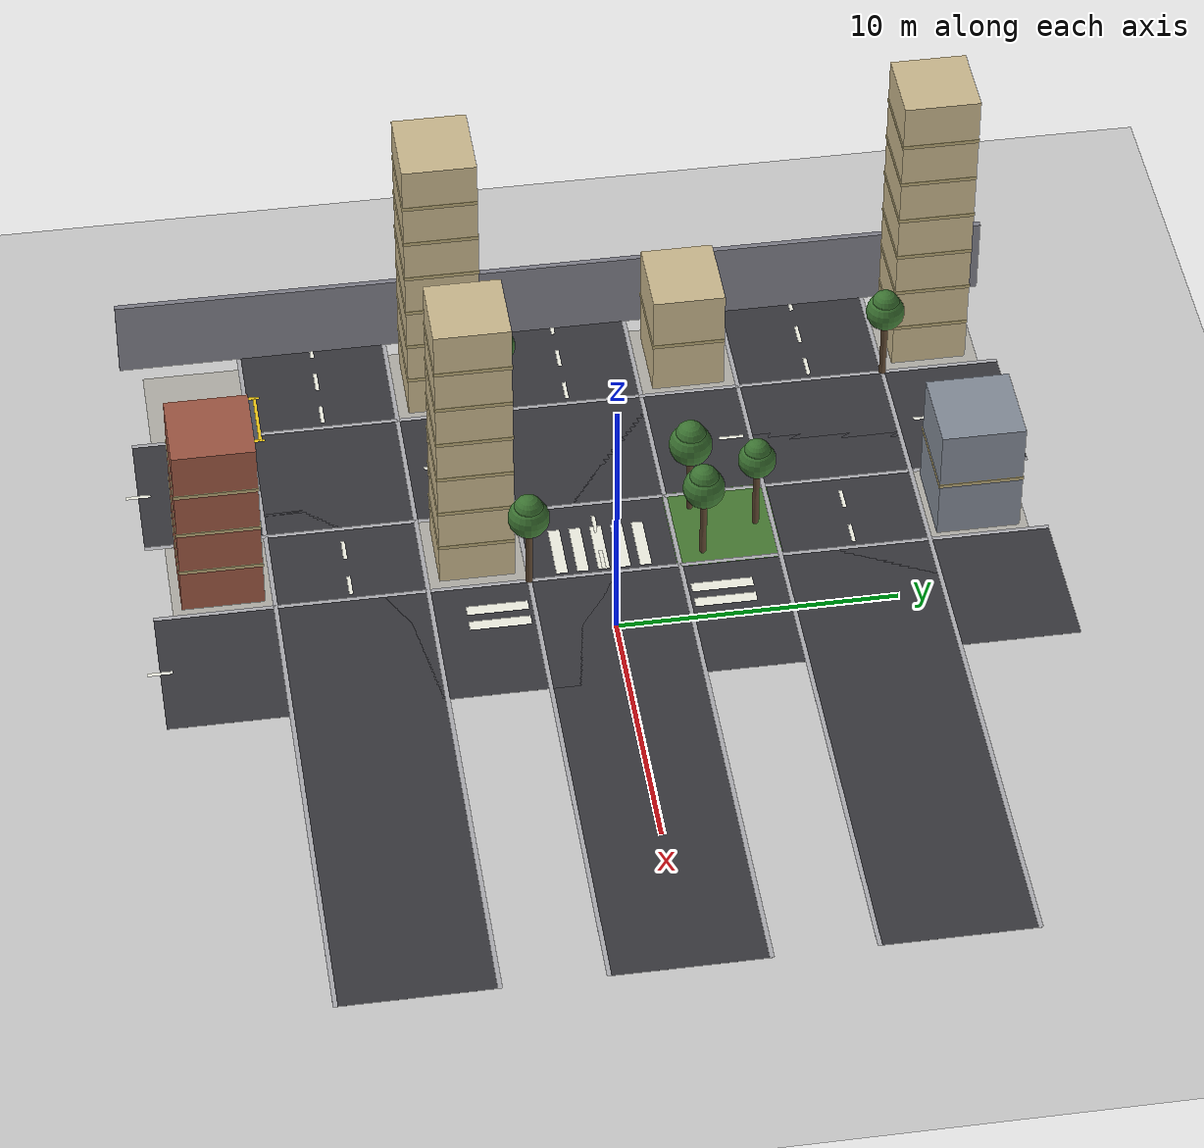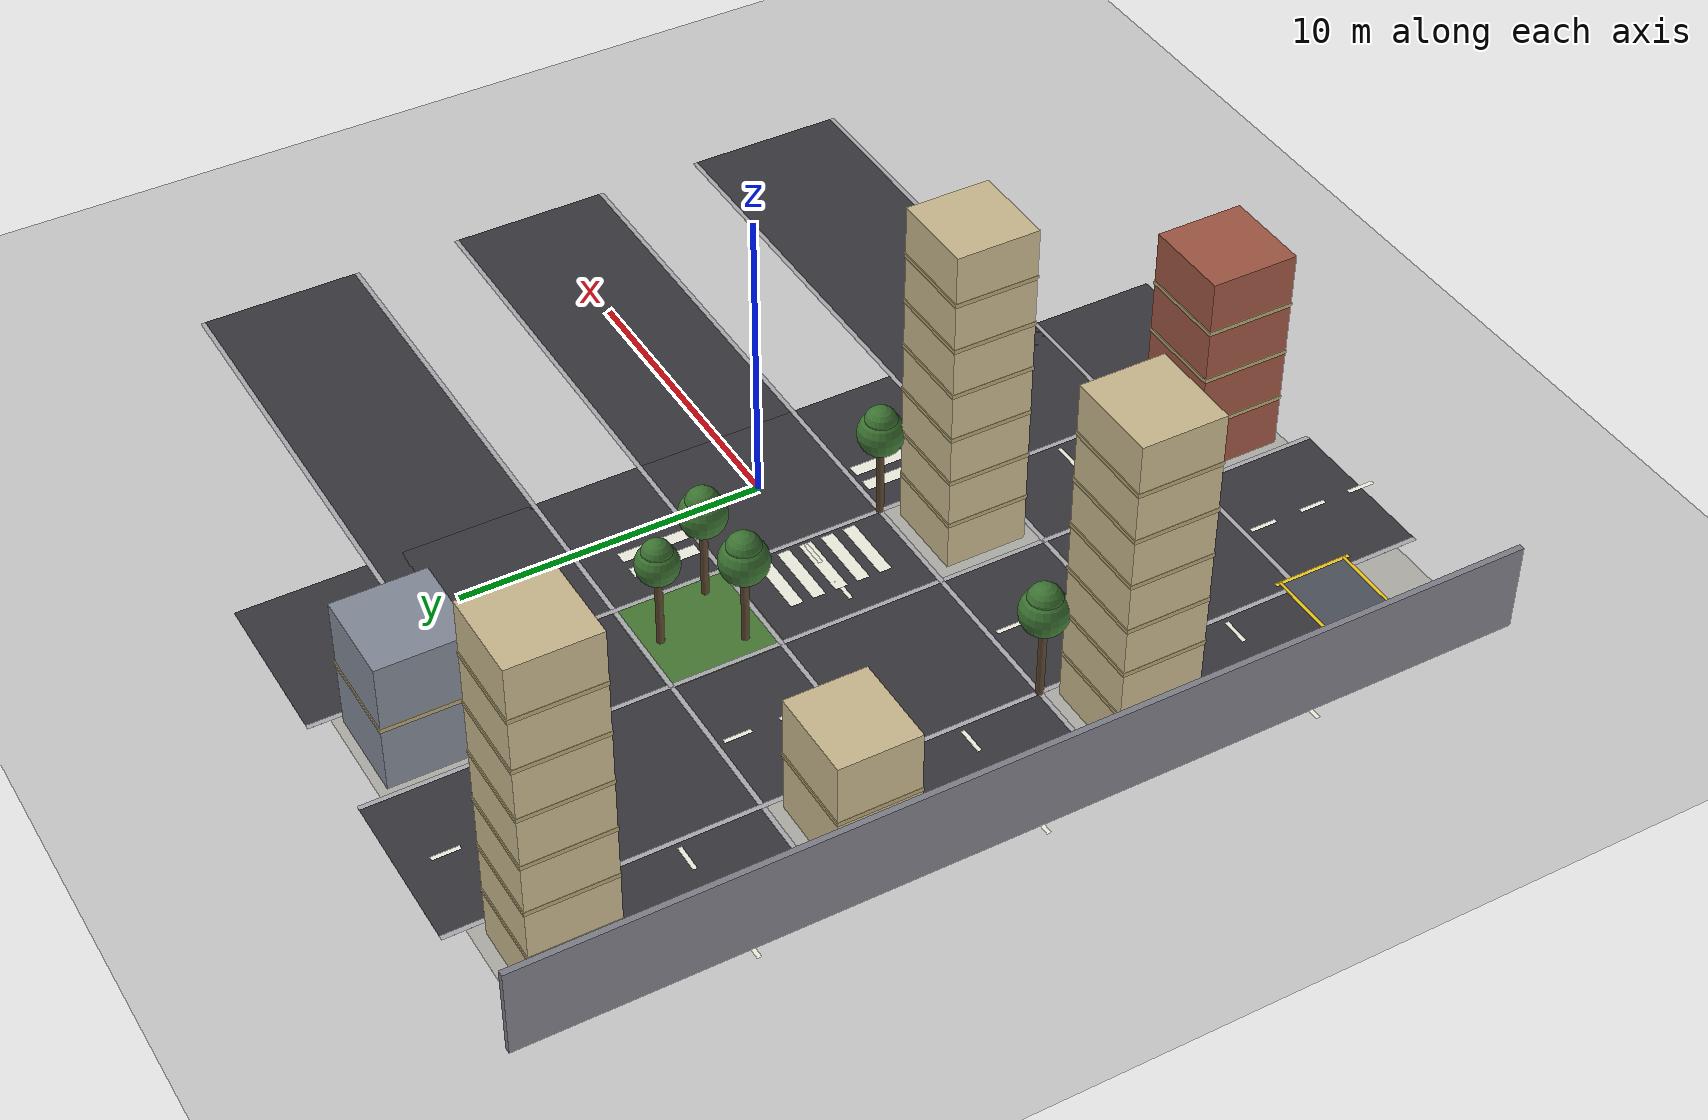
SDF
<sdf version="1.6">
 <world name="default">
  <include><uri>model://sun</uri></include>
  <include><uri>model://ground_plane</uri></include>
  <model name="road_ns_0">
   <static>true</static>
   <pose>-9.0000 0.0000 0.0010 0 0 0</pose>
   <link name="link">
    <visual name="v">
     <geometry><box><size>5.400 32.000 0.002</size></box></geometry>
     <material><ambient>0.13 0.13 0.14 1</ambient><diffuse>0.22 0.22 0.24 1</diffuse></material>
    </visual>
   </link>
  </model>
  <model name="road_ew_0">
   <static>true</static>
   <pose>0.0000 -9.0000 0.0010 0 0 0</pose>
   <link name="link">
    <visual name="v">
     <geometry><box><size>32.000 5.400 0.002</size></box></geometry>
     <material><ambient>0.13 0.13 0.14 1</ambient><diffuse>0.22 0.22 0.24 1</diffuse></material>
    </visual>
   </link>
  </model>
  <model name="kerb_ns_0_-1">
   <static>true</static>
   <pose>-11.7000 0.0000 0.0030 0 0 0</pose>
   <link name="link">
    <visual name="v">
     <geometry><box><size>0.160 32.000 0.002</size></box></geometry>
     <material><ambient>0.42 0.42 0.44 1</ambient><diffuse>0.68 0.68 0.70 1</diffuse></material>
    </visual>
   </link>
  </model>
  <model name="kerb_ew_0_-1">
   <static>true</static>
   <pose>0.0000 -11.7000 0.0030 0 0 0</pose>
   <link name="link">
    <visual name="v">
     <geometry><box><size>32.000 0.160 0.002</size></box></geometry>
     <material><ambient>0.42 0.42 0.44 1</ambient><diffuse>0.68 0.68 0.70 1</diffuse></material>
    </visual>
   </link>
  </model>
  <model name="kerb_ns_0_1">
   <static>true</static>
   <pose>-6.3000 0.0000 0.0030 0 0 0</pose>
   <link name="link">
    <visual name="v">
     <geometry><box><size>0.160 32.000 0.002</size></box></geometry>
     <material><ambient>0.42 0.42 0.44 1</ambient><diffuse>0.68 0.68 0.70 1</diffuse></material>
    </visual>
   </link>
  </model>
  <model name="kerb_ew_0_1">
   <static>true</static>
   <pose>0.0000 -6.3000 0.0030 0 0 0</pose>
   <link name="link">
    <visual name="v">
     <geometry><box><size>32.000 0.160 0.002</size></box></geometry>
     <material><ambient>0.42 0.42 0.44 1</ambient><diffuse>0.68 0.68 0.70 1</diffuse></material>
    </visual>
   </link>
  </model>
  <model name="road_ns_1">
   <static>true</static>
   <pose>0.0000 0.0000 0.0010 0 0 0</pose>
   <link name="link">
    <visual name="v">
     <geometry><box><size>5.400 32.000 0.002</size></box></geometry>
     <material><ambient>0.13 0.13 0.14 1</ambient><diffuse>0.22 0.22 0.24 1</diffuse></material>
    </visual>
   </link>
  </model>
  <model name="road_ew_1">
   <static>true</static>
   <pose>0.0000 0.0000 0.0010 0 0 0</pose>
   <link name="link">
    <visual name="v">
     <geometry><box><size>32.000 5.400 0.002</size></box></geometry>
     <material><ambient>0.13 0.13 0.14 1</ambient><diffuse>0.22 0.22 0.24 1</diffuse></material>
    </visual>
   </link>
  </model>
  <model name="kerb_ns_1_-1">
   <static>true</static>
   <pose>-2.7000 0.0000 0.0030 0 0 0</pose>
   <link name="link">
    <visual name="v">
     <geometry><box><size>0.160 32.000 0.002</size></box></geometry>
     <material><ambient>0.42 0.42 0.44 1</ambient><diffuse>0.68 0.68 0.70 1</diffuse></material>
    </visual>
   </link>
  </model>
  <model name="kerb_ew_1_-1">
   <static>true</static>
   <pose>0.0000 -2.7000 0.0030 0 0 0</pose>
   <link name="link">
    <visual name="v">
     <geometry><box><size>32.000 0.160 0.002</size></box></geometry>
     <material><ambient>0.42 0.42 0.44 1</ambient><diffuse>0.68 0.68 0.70 1</diffuse></material>
    </visual>
   </link>
  </model>
  <model name="kerb_ew_1_1">
   <static>true</static>
   <pose>0.0000 2.7000 0.0030 0 0 0</pose>
   <link name="link">
    <visual name="v">
     <geometry><box><size>32.000 0.160 0.002</size></box></geometry>
     <material><ambient>0.42 0.42 0.44 1</ambient><diffuse>0.68 0.68 0.70 1</diffuse></material>
    </visual>
   </link>
  </model>
  <model name="road_ew_2">
   <static>true</static>
   <pose>0.0000 9.0000 0.0010 0 0 0</pose>
   <link name="link">
    <visual name="v">
     <geometry><box><size>32.000 5.400 0.002</size></box></geometry>
     <material><ambient>0.13 0.13 0.14 1</ambient><diffuse>0.22 0.22 0.24 1</diffuse></material>
    </visual>
   </link>
  </model>
  <model name="kerb_ew_2_-1">
   <static>true</static>
   <pose>0.0000 6.3000 0.0030 0 0 0</pose>
   <link name="link">
    <visual name="v">
     <geometry><box><size>32.000 0.160 0.002</size></box></geometry>
     <material><ambient>0.42 0.42 0.44 1</ambient><diffuse>0.68 0.68 0.70 1</diffuse></material>
    </visual>
   </link>
  </model>
  <model name="kerb_ew_2_1">
   <static>true</static>
   <pose>0.0000 11.7000 0.0030 0 0 0</pose>
   <link name="link">
    <visual name="v">
     <geometry><box><size>32.000 0.160 0.002</size></box></geometry>
     <material><ambient>0.42 0.42 0.44 1</ambient><diffuse>0.68 0.68 0.70 1</diffuse></material>
    </visual>
   </link>
  </model>
  <model name="dash_ns_0">
   <static>true</static>
   <pose>-9.0000 -16.0000 0.0035 0 0 0</pose>
   <link name="link">
    <visual name="v">
     <geometry><box><size>0.140 0.900 0.002</size></box></geometry>
     <material><ambient>0.60 0.60 0.55 1</ambient><diffuse>0.95 0.95 0.90 1</diffuse></material>
    </visual>
   </link>
  </model>
  <model name="dash_ns_1">
   <static>true</static>
   <pose>-9.0000 -14.2000 0.0035 0 0 0</pose>
   <link name="link">
    <visual name="v">
     <geometry><box><size>0.140 0.900 0.002</size></box></geometry>
     <material><ambient>0.60 0.60 0.55 1</ambient><diffuse>0.95 0.95 0.90 1</diffuse></material>
    </visual>
   </link>
  </model>
  <model name="dash_ns_2">
   <static>true</static>
   <pose>-9.0000 -12.4000 0.0035 0 0 0</pose>
   <link name="link">
    <visual name="v">
     <geometry><box><size>0.140 0.900 0.002</size></box></geometry>
     <material><ambient>0.60 0.60 0.55 1</ambient><diffuse>0.95 0.95 0.90 1</diffuse></material>
    </visual>
   </link>
  </model>
  <model name="dash_ns_3">
   <static>true</static>
   <pose>-9.0000 -5.2000 0.0035 0 0 0</pose>
   <link name="link">
    <visual name="v">
     <geometry><box><size>0.140 0.900 0.002</size></box></geometry>
     <material><ambient>0.60 0.60 0.55 1</ambient><diffuse>0.95 0.95 0.90 1</diffuse></material>
    </visual>
   </link>
  </model>
  <model name="dash_ns_4">
   <static>true</static>
   <pose>-9.0000 -3.4000 0.0035 0 0 0</pose>
   <link name="link">
    <visual name="v">
     <geometry><box><size>0.140 0.900 0.002</size></box></geometry>
     <material><ambient>0.60 0.60 0.55 1</ambient><diffuse>0.95 0.95 0.90 1</diffuse></material>
    </visual>
   </link>
  </model>
  <model name="dash_ns_5">
   <static>true</static>
   <pose>-9.0000 3.8000 0.0035 0 0 0</pose>
   <link name="link">
    <visual name="v">
     <geometry><box><size>0.140 0.900 0.002</size></box></geometry>
     <material><ambient>0.60 0.60 0.55 1</ambient><diffuse>0.95 0.95 0.90 1</diffuse></material>
    </visual>
   </link>
  </model>
  <model name="dash_ns_6">
   <static>true</static>
   <pose>-9.0000 5.6000 0.0035 0 0 0</pose>
   <link name="link">
    <visual name="v">
     <geometry><box><size>0.140 0.900 0.002</size></box></geometry>
     <material><ambient>0.60 0.60 0.55 1</ambient><diffuse>0.95 0.95 0.90 1</diffuse></material>
    </visual>
   </link>
  </model>
  <model name="dash_ns_7">
   <static>true</static>
   <pose>-9.0000 12.8000 0.0035 0 0 0</pose>
   <link name="link">
    <visual name="v">
     <geometry><box><size>0.140 0.900 0.002</size></box></geometry>
     <material><ambient>0.60 0.60 0.55 1</ambient><diffuse>0.95 0.95 0.90 1</diffuse></material>
    </visual>
   </link>
  </model>
  <model name="dash_ns_8">
   <static>true</static>
   <pose>-9.0000 14.6000 0.0035 0 0 0</pose>
   <link name="link">
    <visual name="v">
     <geometry><box><size>0.140 0.900 0.002</size></box></geometry>
     <material><ambient>0.60 0.60 0.55 1</ambient><diffuse>0.95 0.95 0.90 1</diffuse></material>
    </visual>
   </link>
  </model>
  <model name="dash_ew_9">
   <static>true</static>
   <pose>-16.0000 -9.0000 0.0035 0 0 0</pose>
   <link name="link">
    <visual name="v">
     <geometry><box><size>0.900 0.140 0.002</size></box></geometry>
     <material><ambient>0.60 0.60 0.55 1</ambient><diffuse>0.95 0.95 0.90 1</diffuse></material>
    </visual>
   </link>
  </model>
  <model name="dash_ew_10">
   <static>true</static>
   <pose>-14.2000 -9.0000 0.0035 0 0 0</pose>
   <link name="link">
    <visual name="v">
     <geometry><box><size>0.900 0.140 0.002</size></box></geometry>
     <material><ambient>0.60 0.60 0.55 1</ambient><diffuse>0.95 0.95 0.90 1</diffuse></material>
    </visual>
   </link>
  </model>
  <model name="dash_ew_11">
   <static>true</static>
   <pose>-12.4000 -9.0000 0.0035 0 0 0</pose>
   <link name="link">
    <visual name="v">
     <geometry><box><size>0.900 0.140 0.002</size></box></geometry>
     <material><ambient>0.60 0.60 0.55 1</ambient><diffuse>0.95 0.95 0.90 1</diffuse></material>
    </visual>
   </link>
  </model>
  <model name="dash_ew_12">
   <static>true</static>
   <pose>-5.2000 -9.0000 0.0035 0 0 0</pose>
   <link name="link">
    <visual name="v">
     <geometry><box><size>0.900 0.140 0.002</size></box></geometry>
     <material><ambient>0.60 0.60 0.55 1</ambient><diffuse>0.95 0.95 0.90 1</diffuse></material>
    </visual>
   </link>
  </model>
  <model name="dash_ew_13">
   <static>true</static>
   <pose>-3.4000 -9.0000 0.0035 0 0 0</pose>
   <link name="link">
    <visual name="v">
     <geometry><box><size>0.900 0.140 0.002</size></box></geometry>
     <material><ambient>0.60 0.60 0.55 1</ambient><diffuse>0.95 0.95 0.90 1</diffuse></material>
    </visual>
   </link>
  </model>
  <model name="dash_ns_18">
   <static>true</static>
   <pose>0.0000 -16.0000 0.0035 0 0 0</pose>
   <link name="link">
    <visual name="v">
     <geometry><box><size>0.140 0.900 0.002</size></box></geometry>
     <material><ambient>0.60 0.60 0.55 1</ambient><diffuse>0.95 0.95 0.90 1</diffuse></material>
    </visual>
   </link>
  </model>
  <model name="dash_ew_27">
   <static>true</static>
   <pose>-16.0000 0.0000 0.0035 0 0 0</pose>
   <link name="link">
    <visual name="v">
     <geometry><box><size>0.900 0.140 0.002</size></box></geometry>
     <material><ambient>0.60 0.60 0.55 1</ambient><diffuse>0.95 0.95 0.90 1</diffuse></material>
    </visual>
   </link>
  </model>
  <model name="dash_ew_28">
   <static>true</static>
   <pose>-14.2000 0.0000 0.0035 0 0 0</pose>
   <link name="link">
    <visual name="v">
     <geometry><box><size>0.900 0.140 0.002</size></box></geometry>
     <material><ambient>0.60 0.60 0.55 1</ambient><diffuse>0.95 0.95 0.90 1</diffuse></material>
    </visual>
   </link>
  </model>
  <model name="dash_ew_29">
   <static>true</static>
   <pose>-12.4000 0.0000 0.0035 0 0 0</pose>
   <link name="link">
    <visual name="v">
     <geometry><box><size>0.900 0.140 0.002</size></box></geometry>
     <material><ambient>0.60 0.60 0.55 1</ambient><diffuse>0.95 0.95 0.90 1</diffuse></material>
    </visual>
   </link>
  </model>
  <model name="dash_ew_30">
   <static>true</static>
   <pose>-5.2000 0.0000 0.0035 0 0 0</pose>
   <link name="link">
    <visual name="v">
     <geometry><box><size>0.900 0.140 0.002</size></box></geometry>
     <material><ambient>0.60 0.60 0.55 1</ambient><diffuse>0.95 0.95 0.90 1</diffuse></material>
    </visual>
   </link>
  </model>
  <model name="dash_ew_31">
   <static>true</static>
   <pose>-3.4000 0.0000 0.0035 0 0 0</pose>
   <link name="link">
    <visual name="v">
     <geometry><box><size>0.900 0.140 0.002</size></box></geometry>
     <material><ambient>0.60 0.60 0.55 1</ambient><diffuse>0.95 0.95 0.90 1</diffuse></material>
    </visual>
   </link>
  </model>
  <model name="dash_ew_45">
   <static>true</static>
   <pose>-16.0000 9.0000 0.0035 0 0 0</pose>
   <link name="link">
    <visual name="v">
     <geometry><box><size>0.900 0.140 0.002</size></box></geometry>
     <material><ambient>0.60 0.60 0.55 1</ambient><diffuse>0.95 0.95 0.90 1</diffuse></material>
    </visual>
   </link>
  </model>
  <model name="dash_ew_46">
   <static>true</static>
   <pose>-14.2000 9.0000 0.0035 0 0 0</pose>
   <link name="link">
    <visual name="v">
     <geometry><box><size>0.900 0.140 0.002</size></box></geometry>
     <material><ambient>0.60 0.60 0.55 1</ambient><diffuse>0.95 0.95 0.90 1</diffuse></material>
    </visual>
   </link>
  </model>
  <model name="dash_ew_47">
   <static>true</static>
   <pose>-12.4000 9.0000 0.0035 0 0 0</pose>
   <link name="link">
    <visual name="v">
     <geometry><box><size>0.900 0.140 0.002</size></box></geometry>
     <material><ambient>0.60 0.60 0.55 1</ambient><diffuse>0.95 0.95 0.90 1</diffuse></material>
    </visual>
   </link>
  </model>
  <model name="dash_ew_48">
   <static>true</static>
   <pose>-5.2000 9.0000 0.0035 0 0 0</pose>
   <link name="link">
    <visual name="v">
     <geometry><box><size>0.900 0.140 0.002</size></box></geometry>
     <material><ambient>0.60 0.60 0.55 1</ambient><diffuse>0.95 0.95 0.90 1</diffuse></material>
    </visual>
   </link>
  </model>
  <model name="dash_ew_49">
   <static>true</static>
   <pose>-3.4000 9.0000 0.0035 0 0 0</pose>
   <link name="link">
    <visual name="v">
     <geometry><box><size>0.900 0.140 0.002</size></box></geometry>
     <material><ambient>0.60 0.60 0.55 1</ambient><diffuse>0.95 0.95 0.90 1</diffuse></material>
    </visual>
   </link>
  </model>
  <model name="zebra_0">
   <static>true</static>
   <pose>-1.5000 4.0000 0.0035 0 0 0</pose>
   <link name="link">
    <visual name="v">
     <geometry><box><size>0.420 2.200 0.002</size></box></geometry>
     <material><ambient>0.60 0.60 0.55 1</ambient><diffuse>0.95 0.95 0.90 1</diffuse></material>
    </visual>
   </link>
  </model>
  <model name="zebra_1">
   <static>true</static>
   <pose>-0.7500 4.0000 0.0035 0 0 0</pose>
   <link name="link">
    <visual name="v">
     <geometry><box><size>0.420 2.200 0.002</size></box></geometry>
     <material><ambient>0.60 0.60 0.55 1</ambient><diffuse>0.95 0.95 0.90 1</diffuse></material>
    </visual>
   </link>
  </model>
  <model name="zebra_5">
   <static>true</static>
   <pose>-1.5000 -4.0000 0.0035 0 0 0</pose>
   <link name="link">
    <visual name="v">
     <geometry><box><size>0.420 2.200 0.002</size></box></geometry>
     <material><ambient>0.60 0.60 0.55 1</ambient><diffuse>0.95 0.95 0.90 1</diffuse></material>
    </visual>
   </link>
  </model>
  <model name="zebra_6">
   <static>true</static>
   <pose>-0.7500 -4.0000 0.0035 0 0 0</pose>
   <link name="link">
    <visual name="v">
     <geometry><box><size>0.420 2.200 0.002</size></box></geometry>
     <material><ambient>0.60 0.60 0.55 1</ambient><diffuse>0.95 0.95 0.90 1</diffuse></material>
    </visual>
   </link>
  </model>
  <model name="zebra_15">
   <static>true</static>
   <pose>-4.0000 -1.5000 0.0035 0 0 0</pose>
   <link name="link">
    <visual name="v">
     <geometry><box><size>2.200 0.420 0.002</size></box></geometry>
     <material><ambient>0.60 0.60 0.55 1</ambient><diffuse>0.95 0.95 0.90 1</diffuse></material>
    </visual>
   </link>
  </model>
  <model name="zebra_16">
   <static>true</static>
   <pose>-4.0000 -0.7500 0.0035 0 0 0</pose>
   <link name="link">
    <visual name="v">
     <geometry><box><size>2.200 0.420 0.002</size></box></geometry>
     <material><ambient>0.60 0.60 0.55 1</ambient><diffuse>0.95 0.95 0.90 1</diffuse></material>
    </visual>
   </link>
  </model>
  <model name="zebra_17">
   <static>true</static>
   <pose>-4.0000 0.0000 0.0035 0 0 0</pose>
   <link name="link">
    <visual name="v">
     <geometry><box><size>2.200 0.420 0.002</size></box></geometry>
     <material><ambient>0.60 0.60 0.55 1</ambient><diffuse>0.95 0.95 0.90 1</diffuse></material>
    </visual>
   </link>
  </model>
  <model name="zebra_18">
   <static>true</static>
   <pose>-4.0000 0.7500 0.0035 0 0 0</pose>
   <link name="link">
    <visual name="v">
     <geometry><box><size>2.200 0.420 0.002</size></box></geometry>
     <material><ambient>0.60 0.60 0.55 1</ambient><diffuse>0.95 0.95 0.90 1</diffuse></material>
    </visual>
   </link>
  </model>
  <model name="zebra_19">
   <static>true</static>
   <pose>-4.0000 1.5000 0.0035 0 0 0</pose>
   <link name="link">
    <visual name="v">
     <geometry><box><size>2.200 0.420 0.002</size></box></geometry>
     <material><ambient>0.60 0.60 0.55 1</ambient><diffuse>0.95 0.95 0.90 1</diffuse></material>
    </visual>
   </link>
  </model>
  <model name="pavement_00">
   <static>true</static>
   <pose>-13.5000 -4.5000 0.0010 0 0 0</pose>
   <link name="link">
    <visual name="v">
     <geometry><box><size>3.600 3.600 0.002</size></box></geometry>
     <material><ambient>0.44 0.43 0.41 1</ambient><diffuse>0.70 0.69 0.66 1</diffuse></material>
    </visual>
   </link>
  </model>
  <model name="pavement_01">
   <static>true</static>
   <pose>-13.5000 4.5000 0.0010 0 0 0</pose>
   <link name="link">
    <visual name="v">
     <geometry><box><size>3.600 3.600 0.002</size></box></geometry>
     <material><ambient>0.44 0.43 0.41 1</ambient><diffuse>0.70 0.69 0.66 1</diffuse></material>
    </visual>
   </link>
  </model>
  <model name="pavement_02">
   <static>true</static>
   <pose>-13.5000 13.5000 0.0010 0 0 0</pose>
   <link name="link">
    <visual name="v">
     <geometry><box><size>3.600 3.600 0.002</size></box></geometry>
     <material><ambient>0.44 0.43 0.41 1</ambient><diffuse>0.70 0.69 0.66 1</diffuse></material>
    </visual>
   </link>
  </model>
  <model name="pavement_03">
   <static>true</static>
   <pose>-4.5000 -13.5000 0.0010 0 0 0</pose>
   <link name="link">
    <visual name="v">
     <geometry><box><size>3.600 3.600 0.002</size></box></geometry>
     <material><ambient>0.44 0.43 0.41 1</ambient><diffuse>0.70 0.69 0.66 1</diffuse></material>
    </visual>
   </link>
  </model>
  <model name="pavement_04">
   <static>true</static>
   <pose>-4.5000 -4.5000 0.0010 0 0 0</pose>
   <link name="link">
    <visual name="v">
     <geometry><box><size>3.600 3.600 0.002</size></box></geometry>
     <material><ambient>0.44 0.43 0.41 1</ambient><diffuse>0.70 0.69 0.66 1</diffuse></material>
    </visual>
   </link>
  </model>
  <model name="pavement_06">
   <static>true</static>
   <pose>-4.5000 13.5000 0.0010 0 0 0</pose>
   <link name="link">
    <visual name="v">
     <geometry><box><size>3.600 3.600 0.002</size></box></geometry>
     <material><ambient>0.44 0.43 0.41 1</ambient><diffuse>0.70 0.69 0.66 1</diffuse></material>
    </visual>
   </link>
  </model>
  <model name="pavement_15">
   <static>true</static>
   <pose>-13.5000 -13.5000 0.0010 0 0 0</pose>
   <link name="link">
    <visual name="v">
     <geometry><box><size>3.600 3.600 0.002</size></box></geometry>
     <material><ambient>0.44 0.43 0.41 1</ambient><diffuse>0.70 0.69 0.66 1</diffuse></material>
    </visual>
   </link>
  </model>
  <model name="park_lawn">
   <static>true</static>
   <pose>-4.5000 4.5000 0.0014 0 0 0</pose>
   <link name="link">
    <visual name="v">
     <geometry><box><size>3.800 3.800 0.002</size></box></geometry>
     <material><ambient>0.16 0.28 0.12 1</ambient><diffuse>0.28 0.48 0.20 1</diffuse></material>
    </visual>
   </link>
  </model>
  <model name="warehouse_apron">
   <static>true</static>
   <pose>-12.5000 -12.5000 0.0040 0 0 0</pose>
   <link name="link">
    <visual name="v">
     <geometry><box><size>2.400 2.400 0.002</size></box></geometry>
     <material>
      <ambient>0.16 0.16 0.19 1</ambient>
      <diffuse>0.30 0.32 0.36 1</diffuse>
      <emissive>0.09 0.09 0.11 1</emissive>
     </material>
    </visual>
   </link>
  </model>
  <model name="warehouse_edge_n">
   <static>true</static>
   <pose>-12.5000 -11.3500 0.0050 0 0 0</pose>
   <link name="link">
    <visual name="v">
     <geometry><box><size>2.400 0.120 0.002</size></box></geometry>
     <material>
      <ambient>0.35 0.30 0.05 1</ambient>
      <diffuse>0.95 0.80 0.10 1</diffuse>
      <emissive>0.25 0.21 0.03 1</emissive>
     </material>
    </visual>
   </link>
  </model>
  <model name="warehouse_edge_s">
   <static>true</static>
   <pose>-12.5000 -13.6500 0.0050 0 0 0</pose>
   <link name="link">
    <visual name="v">
     <geometry><box><size>2.400 0.120 0.002</size></box></geometry>
     <material>
      <ambient>0.35 0.30 0.05 1</ambient>
      <diffuse>0.95 0.80 0.10 1</diffuse>
      <emissive>0.25 0.21 0.03 1</emissive>
     </material>
    </visual>
   </link>
  </model>
  <model name="warehouse_edge_e">
   <static>true</static>
   <pose>-11.3500 -12.5000 0.0050 0 0 0</pose>
   <link name="link">
    <visual name="v">
     <geometry><box><size>0.120 2.640 0.002</size></box></geometry>
     <material>
      <ambient>0.35 0.30 0.05 1</ambient>
      <diffuse>0.95 0.80 0.10 1</diffuse>
      <emissive>0.25 0.21 0.03 1</emissive>
     </material>
    </visual>
   </link>
  </model>
  <model name="warehouse_edge_w">
   <static>true</static>
   <pose>-13.6500 -12.5000 0.0050 0 0 0</pose>
   <link name="link">
    <visual name="v">
     <geometry><box><size>0.120 2.640 0.002</size></box></geometry>
     <material>
      <ambient>0.35 0.30 0.05 1</ambient>
      <diffuse>0.95 0.80 0.10 1</diffuse>
      <emissive>0.25 0.21 0.03 1</emissive>
     </material>
    </visual>
   </link>
  </model>
  <model name="building_00">
   <static>true</static>
   <pose>-13.5000 -4.5000 5.6638 0 0 0</pose>
   <link name="link">
    <collision name="c"><geometry><box><size>2.956 2.678 11.328</size></box></geometry></collision>
    <visual name="v">
     <geometry><box><size>2.956 2.678 11.328</size></box></geometry>
     <material><ambient>0.50 0.45 0.34 1</ambient><diffuse>0.80 0.73 0.56 1</diffuse></material>
    </visual>
   </link>
  </model>
  <model name="building_00_win1">
   <static>true</static>
   <pose>-13.5000 -4.5000 1.6182 0 0 0</pose>
   <link name="link">
    <visual name="v">
     <geometry><box><size>2.996 2.718 0.140</size></box></geometry>
     <material>
      <ambient>0.30 0.28 0.20 1</ambient>
      <diffuse>0.72 0.66 0.46 1</diffuse>
      <emissive>0.30 0.26 0.15 1</emissive>
     </material>
    </visual>
   </link>
  </model>
  <model name="building_00_win2">
   <static>true</static>
   <pose>-13.5000 -4.5000 3.2364 0 0 0</pose>
   <link name="link">
    <visual name="v">
     <geometry><box><size>2.996 2.718 0.140</size></box></geometry>
     <material>
      <ambient>0.30 0.28 0.20 1</ambient>
      <diffuse>0.72 0.66 0.46 1</diffuse>
      <emissive>0.30 0.26 0.15 1</emissive>
     </material>
    </visual>
   </link>
  </model>
  <model name="building_00_win3">
   <static>true</static>
   <pose>-13.5000 -4.5000 4.8547 0 0 0</pose>
   <link name="link">
    <visual name="v">
     <geometry><box><size>2.996 2.718 0.140</size></box></geometry>
     <material>
      <ambient>0.30 0.28 0.20 1</ambient>
      <diffuse>0.72 0.66 0.46 1</diffuse>
      <emissive>0.30 0.26 0.15 1</emissive>
     </material>
    </visual>
   </link>
  </model>
  <model name="building_00_win4">
   <static>true</static>
   <pose>-13.5000 -4.5000 6.4729 0 0 0</pose>
   <link name="link">
    <visual name="v">
     <geometry><box><size>2.996 2.718 0.140</size></box></geometry>
     <material>
      <ambient>0.30 0.28 0.20 1</ambient>
      <diffuse>0.72 0.66 0.46 1</diffuse>
      <emissive>0.30 0.26 0.15 1</emissive>
     </material>
    </visual>
   </link>
  </model>
  <model name="building_00_win5">
   <static>true</static>
   <pose>-13.5000 -4.5000 8.0911 0 0 0</pose>
   <link name="link">
    <visual name="v">
     <geometry><box><size>2.996 2.718 0.140</size></box></geometry>
     <material>
      <ambient>0.30 0.28 0.20 1</ambient>
      <diffuse>0.72 0.66 0.46 1</diffuse>
      <emissive>0.30 0.26 0.15 1</emissive>
     </material>
    </visual>
   </link>
  </model>
  <model name="building_00_win6">
   <static>true</static>
   <pose>-13.5000 -4.5000 9.7093 0 0 0</pose>
   <link name="link">
    <visual name="v">
     <geometry><box><size>2.996 2.718 0.140</size></box></geometry>
     <material>
      <ambient>0.30 0.28 0.20 1</ambient>
      <diffuse>0.72 0.66 0.46 1</diffuse>
      <emissive>0.30 0.26 0.15 1</emissive>
     </material>
    </visual>
   </link>
  </model>
  <model name="building_01">
   <static>true</static>
   <pose>-13.5000 4.5000 2.0527 0 0 0</pose>
   <link name="link">
    <collision name="c"><geometry><box><size>2.975 2.639 4.105</size></box></geometry></collision>
    <visual name="v">
     <geometry><box><size>2.975 2.639 4.105</size></box></geometry>
     <material><ambient>0.50 0.45 0.34 1</ambient><diffuse>0.80 0.73 0.56 1</diffuse></material>
    </visual>
   </link>
  </model>
  <model name="building_01_win1">
   <static>true</static>
   <pose>-13.5000 4.5000 2.0527 0 0 0</pose>
   <link name="link">
    <visual name="v">
     <geometry><box><size>3.015 2.679 0.140</size></box></geometry>
     <material>
      <ambient>0.30 0.28 0.20 1</ambient>
      <diffuse>0.72 0.66 0.46 1</diffuse>
      <emissive>0.30 0.26 0.15 1</emissive>
     </material>
    </visual>
   </link>
  </model>
  <model name="building_02">
   <static>true</static>
   <pose>-13.5000 13.5000 5.9826 0 0 0</pose>
   <link name="link">
    <collision name="c"><geometry><box><size>2.756 2.741 11.965</size></box></geometry></collision>
    <visual name="v">
     <geometry><box><size>2.756 2.741 11.965</size></box></geometry>
     <material><ambient>0.50 0.45 0.34 1</ambient><diffuse>0.80 0.73 0.56 1</diffuse></material>
    </visual>
   </link>
  </model>
  <model name="building_02_win1">
   <static>true</static>
   <pose>-13.5000 13.5000 1.7093 0 0 0</pose>
   <link name="link">
    <visual name="v">
     <geometry><box><size>2.796 2.781 0.140</size></box></geometry>
     <material>
      <ambient>0.30 0.28 0.20 1</ambient>
      <diffuse>0.72 0.66 0.46 1</diffuse>
      <emissive>0.30 0.26 0.15 1</emissive>
     </material>
    </visual>
   </link>
  </model>
  <model name="building_02_win2">
   <static>true</static>
   <pose>-13.5000 13.5000 3.4186 0 0 0</pose>
   <link name="link">
    <visual name="v">
     <geometry><box><size>2.796 2.781 0.140</size></box></geometry>
     <material>
      <ambient>0.30 0.28 0.20 1</ambient>
      <diffuse>0.72 0.66 0.46 1</diffuse>
      <emissive>0.30 0.26 0.15 1</emissive>
     </material>
    </visual>
   </link>
  </model>
  <model name="building_02_win3">
   <static>true</static>
   <pose>-13.5000 13.5000 5.1279 0 0 0</pose>
   <link name="link">
    <visual name="v">
     <geometry><box><size>2.796 2.781 0.140</size></box></geometry>
     <material>
      <ambient>0.30 0.28 0.20 1</ambient>
      <diffuse>0.72 0.66 0.46 1</diffuse>
      <emissive>0.30 0.26 0.15 1</emissive>
     </material>
    </visual>
   </link>
  </model>
  <model name="building_02_win4">
   <static>true</static>
   <pose>-13.5000 13.5000 6.8372 0 0 0</pose>
   <link name="link">
    <visual name="v">
     <geometry><box><size>2.796 2.781 0.140</size></box></geometry>
     <material>
      <ambient>0.30 0.28 0.20 1</ambient>
      <diffuse>0.72 0.66 0.46 1</diffuse>
      <emissive>0.30 0.26 0.15 1</emissive>
     </material>
    </visual>
   </link>
  </model>
  <model name="building_02_win5">
   <static>true</static>
   <pose>-13.5000 13.5000 8.5465 0 0 0</pose>
   <link name="link">
    <visual name="v">
     <geometry><box><size>2.796 2.781 0.140</size></box></geometry>
     <material>
      <ambient>0.30 0.28 0.20 1</ambient>
      <diffuse>0.72 0.66 0.46 1</diffuse>
      <emissive>0.30 0.26 0.15 1</emissive>
     </material>
    </visual>
   </link>
  </model>
  <model name="building_02_win6">
   <static>true</static>
   <pose>-13.5000 13.5000 10.2559 0 0 0</pose>
   <link name="link">
    <visual name="v">
     <geometry><box><size>2.796 2.781 0.140</size></box></geometry>
     <material>
      <ambient>0.30 0.28 0.20 1</ambient>
      <diffuse>0.72 0.66 0.46 1</diffuse>
      <emissive>0.30 0.26 0.15 1</emissive>
     </material>
    </visual>
   </link>
  </model>
  <model name="building_03">
   <static>true</static>
   <pose>-4.5000 -13.5000 3.5885 0 0 0</pose>
   <link name="link">
    <collision name="c"><geometry><box><size>2.925 2.930 7.177</size></box></geometry></collision>
    <visual name="v">
     <geometry><box><size>2.925 2.930 7.177</size></box></geometry>
     <material><ambient>0.38 0.22 0.17 1</ambient><diffuse>0.62 0.34 0.26 1</diffuse></material>
    </visual>
   </link>
  </model>
  <model name="building_03_win1">
   <static>true</static>
   <pose>-4.5000 -13.5000 1.7943 0 0 0</pose>
   <link name="link">
    <visual name="v">
     <geometry><box><size>2.965 2.970 0.140</size></box></geometry>
     <material>
      <ambient>0.30 0.28 0.20 1</ambient>
      <diffuse>0.72 0.66 0.46 1</diffuse>
      <emissive>0.30 0.26 0.15 1</emissive>
     </material>
    </visual>
   </link>
  </model>
  <model name="building_03_win2">
   <static>true</static>
   <pose>-4.5000 -13.5000 3.5885 0 0 0</pose>
   <link name="link">
    <visual name="v">
     <geometry><box><size>2.965 2.970 0.140</size></box></geometry>
     <material>
      <ambient>0.30 0.28 0.20 1</ambient>
      <diffuse>0.72 0.66 0.46 1</diffuse>
      <emissive>0.30 0.26 0.15 1</emissive>
     </material>
    </visual>
   </link>
  </model>
  <model name="building_03_win3">
   <static>true</static>
   <pose>-4.5000 -13.5000 5.3828 0 0 0</pose>
   <link name="link">
    <visual name="v">
     <geometry><box><size>2.965 2.970 0.140</size></box></geometry>
     <material>
      <ambient>0.30 0.28 0.20 1</ambient>
      <diffuse>0.72 0.66 0.46 1</diffuse>
      <emissive>0.30 0.26 0.15 1</emissive>
     </material>
    </visual>
   </link>
  </model>
  <model name="building_04">
   <static>true</static>
   <pose>-4.5000 -4.5000 5.7033 0 0 0</pose>
   <link name="link">
    <collision name="c"><geometry><box><size>2.739 2.691 11.407</size></box></geometry></collision>
    <visual name="v">
     <geometry><box><size>2.739 2.691 11.407</size></box></geometry>
     <material><ambient>0.50 0.45 0.34 1</ambient><diffuse>0.80 0.73 0.56 1</diffuse></material>
    </visual>
   </link>
  </model>
  <model name="building_04_win1">
   <static>true</static>
   <pose>-4.5000 -4.5000 1.6295 0 0 0</pose>
   <link name="link">
    <visual name="v">
     <geometry><box><size>2.779 2.731 0.140</size></box></geometry>
     <material>
      <ambient>0.30 0.28 0.20 1</ambient>
      <diffuse>0.72 0.66 0.46 1</diffuse>
      <emissive>0.30 0.26 0.15 1</emissive>
     </material>
    </visual>
   </link>
  </model>
  <model name="building_04_win2">
   <static>true</static>
   <pose>-4.5000 -4.5000 3.2591 0 0 0</pose>
   <link name="link">
    <visual name="v">
     <geometry><box><size>2.779 2.731 0.140</size></box></geometry>
     <material>
      <ambient>0.30 0.28 0.20 1</ambient>
      <diffuse>0.72 0.66 0.46 1</diffuse>
      <emissive>0.30 0.26 0.15 1</emissive>
     </material>
    </visual>
   </link>
  </model>
  <model name="building_04_win3">
   <static>true</static>
   <pose>-4.5000 -4.5000 4.8886 0 0 0</pose>
   <link name="link">
    <visual name="v">
     <geometry><box><size>2.779 2.731 0.140</size></box></geometry>
     <material>
      <ambient>0.30 0.28 0.20 1</ambient>
      <diffuse>0.72 0.66 0.46 1</diffuse>
      <emissive>0.30 0.26 0.15 1</emissive>
     </material>
    </visual>
   </link>
  </model>
  <model name="building_04_win4">
   <static>true</static>
   <pose>-4.5000 -4.5000 6.5181 0 0 0</pose>
   <link name="link">
    <visual name="v">
     <geometry><box><size>2.779 2.731 0.140</size></box></geometry>
     <material>
      <ambient>0.30 0.28 0.20 1</ambient>
      <diffuse>0.72 0.66 0.46 1</diffuse>
      <emissive>0.30 0.26 0.15 1</emissive>
     </material>
    </visual>
   </link>
  </model>
  <model name="building_04_win5">
   <static>true</static>
   <pose>-4.5000 -4.5000 8.1476 0 0 0</pose>
   <link name="link">
    <visual name="v">
     <geometry><box><size>2.779 2.731 0.140</size></box></geometry>
     <material>
      <ambient>0.30 0.28 0.20 1</ambient>
      <diffuse>0.72 0.66 0.46 1</diffuse>
      <emissive>0.30 0.26 0.15 1</emissive>
     </material>
    </visual>
   </link>
  </model>
  <model name="building_04_win6">
   <static>true</static>
   <pose>-4.5000 -4.5000 9.7772 0 0 0</pose>
   <link name="link">
    <visual name="v">
     <geometry><box><size>2.779 2.731 0.140</size></box></geometry>
     <material>
      <ambient>0.30 0.28 0.20 1</ambient>
      <diffuse>0.72 0.66 0.46 1</diffuse>
      <emissive>0.30 0.26 0.15 1</emissive>
     </material>
    </visual>
   </link>
  </model>
  <model name="building_06">
   <static>true</static>
   <pose>-4.5000 13.5000 2.2561 0 0 0</pose>
   <link name="link">
    <collision name="c"><geometry><box><size>3.045 3.003 4.512</size></box></geometry></collision>
    <visual name="v">
     <geometry><box><size>3.045 3.003 4.512</size></box></geometry>
     <material><ambient>0.30 0.32 0.36 1</ambient><diffuse>0.52 0.55 0.60 1</diffuse></material>
    </visual>
   </link>
  </model>
  <model name="building_06_win1">
   <static>true</static>
   <pose>-4.5000 13.5000 2.2561 0 0 0</pose>
   <link name="link">
    <visual name="v">
     <geometry><box><size>3.085 3.043 0.140</size></box></geometry>
     <material>
      <ambient>0.30 0.28 0.20 1</ambient>
      <diffuse>0.72 0.66 0.46 1</diffuse>
      <emissive>0.30 0.26 0.15 1</emissive>
     </material>
    </visual>
   </link>
  </model>
  <model name="tree_park_0_trunk">
   <static>true</static>
   <pose>-5.6000 3.5000 1.3500 0 0 0</pose>
   <link name="link">
    <collision name="c">
     <geometry><cylinder><radius>0.120</radius><length>2.700</length></cylinder></geometry>
    </collision>
    <visual name="v">
     <geometry><cylinder><radius>0.120</radius><length>2.700</length></cylinder></geometry>
     <material><ambient>0.20 0.15 0.10 1</ambient><diffuse>0.36 0.27 0.18 1</diffuse></material>
    </visual>
   </link>
  </model>
  <model name="tree_park_0_crown">
   <static>true</static>
   <pose>-5.6000 3.5000 3.0447 0 0 0</pose>
   <link name="link">
    <collision name="c"><geometry><sphere><radius>0.775</radius></sphere></geometry></collision>
    <visual name="v">
     <geometry><sphere><radius>0.775</radius></sphere></geometry>
     <material><ambient>0.12 0.24 0.10 1</ambient><diffuse>0.24 0.46 0.20 1</diffuse></material>
    </visual>
   </link>
  </model>
  <model name="tree_park_0_crown2">
   <static>true</static>
   <pose>-5.6000 3.5000 3.4711 0 0 0</pose>
   <link name="link">
    <collision name="c"><geometry><sphere><radius>0.558</radius></sphere></geometry></collision>
    <visual name="v">
     <geometry><sphere><radius>0.558</radius></sphere></geometry>
     <material><ambient>0.12 0.24 0.10 1</ambient><diffuse>0.24 0.46 0.20 1</diffuse></material>
    </visual>
   </link>
  </model>
  <model name="tree_park_1_trunk">
   <static>true</static>
   <pose>-3.3000 3.6000 1.3500 0 0 0</pose>
   <link name="link">
    <collision name="c">
     <geometry><cylinder><radius>0.120</radius><length>2.700</length></cylinder></geometry>
    </collision>
    <visual name="v">
     <geometry><cylinder><radius>0.120</radius><length>2.700</length></cylinder></geometry>
     <material><ambient>0.20 0.15 0.10 1</ambient><diffuse>0.36 0.27 0.18 1</diffuse></material>
    </visual>
   </link>
  </model>
  <model name="tree_park_1_crown">
   <static>true</static>
   <pose>-3.3000 3.6000 3.0692 0 0 0</pose>
   <link name="link">
    <collision name="c"><geometry><sphere><radius>0.749</radius></sphere></geometry></collision>
    <visual name="v">
     <geometry><sphere><radius>0.749</radius></sphere></geometry>
     <material><ambient>0.12 0.24 0.10 1</ambient><diffuse>0.24 0.46 0.20 1</diffuse></material>
    </visual>
   </link>
  </model>
  <model name="tree_park_1_crown2">
   <static>true</static>
   <pose>-3.3000 3.6000 3.4814 0 0 0</pose>
   <link name="link">
    <collision name="c"><geometry><sphere><radius>0.540</radius></sphere></geometry></collision>
    <visual name="v">
     <geometry><sphere><radius>0.540</radius></sphere></geometry>
     <material><ambient>0.12 0.24 0.10 1</ambient><diffuse>0.24 0.46 0.20 1</diffuse></material>
    </visual>
   </link>
  </model>
  <model name="tree_park_2_trunk">
   <static>true</static>
   <pose>-4.5000 5.7000 1.3500 0 0 0</pose>
   <link name="link">
    <collision name="c">
     <geometry><cylinder><radius>0.120</radius><length>2.700</length></cylinder></geometry>
    </collision>
    <visual name="v">
     <geometry><cylinder><radius>0.120</radius><length>2.700</length></cylinder></geometry>
     <material><ambient>0.20 0.15 0.10 1</ambient><diffuse>0.36 0.27 0.18 1</diffuse></material>
    </visual>
   </link>
  </model>
  <model name="tree_park_2_crown">
   <static>true</static>
   <pose>-4.5000 5.7000 3.0189 0 0 0</pose>
   <link name="link">
    <collision name="c"><geometry><sphere><radius>0.677</radius></sphere></geometry></collision>
    <visual name="v">
     <geometry><sphere><radius>0.677</radius></sphere></geometry>
     <material><ambient>0.12 0.24 0.10 1</ambient><diffuse>0.24 0.46 0.20 1</diffuse></material>
    </visual>
   </link>
  </model>
  <model name="tree_park_2_crown2">
   <static>true</static>
   <pose>-4.5000 5.7000 3.3913 0 0 0</pose>
   <link name="link">
    <collision name="c"><geometry><sphere><radius>0.488</radius></sphere></geometry></collision>
    <visual name="v">
     <geometry><sphere><radius>0.488</radius></sphere></geometry>
     <material><ambient>0.12 0.24 0.10 1</ambient><diffuse>0.24 0.46 0.20 1</diffuse></material>
    </visual>
   </link>
  </model>
  <model name="tree_st_0_trunk">
   <static>true</static>
   <pose>-11.7000 -2.7000 1.3500 0 0 0</pose>
   <link name="link">
    <collision name="c">
     <geometry><cylinder><radius>0.120</radius><length>2.700</length></cylinder></geometry>
    </collision>
    <visual name="v">
     <geometry><cylinder><radius>0.120</radius><length>2.700</length></cylinder></geometry>
     <material><ambient>0.20 0.15 0.10 1</ambient><diffuse>0.36 0.27 0.18 1</diffuse></material>
    </visual>
   </link>
  </model>
  <model name="tree_st_0_crown">
   <static>true</static>
   <pose>-11.7000 -2.7000 3.1622 0 0 0</pose>
   <link name="link">
    <collision name="c"><geometry><sphere><radius>0.764</radius></sphere></geometry></collision>
    <visual name="v">
     <geometry><sphere><radius>0.764</radius></sphere></geometry>
     <material><ambient>0.12 0.24 0.10 1</ambient><diffuse>0.24 0.46 0.20 1</diffuse></material>
    </visual>
   </link>
  </model>
  <model name="tree_st_0_crown2">
   <static>true</static>
   <pose>-11.7000 -2.7000 3.5826 0 0 0</pose>
   <link name="link">
    <collision name="c"><geometry><sphere><radius>0.550</radius></sphere></geometry></collision>
    <visual name="v">
     <geometry><sphere><radius>0.550</radius></sphere></geometry>
     <material><ambient>0.12 0.24 0.10 1</ambient><diffuse>0.24 0.46 0.20 1</diffuse></material>
    </visual>
   </link>
  </model>
  <model name="tree_st_2_trunk">
   <static>true</static>
   <pose>-11.7000 11.7000 1.3500 0 0 0</pose>
   <link name="link">
    <collision name="c">
     <geometry><cylinder><radius>0.120</radius><length>2.700</length></cylinder></geometry>
    </collision>
    <visual name="v">
     <geometry><cylinder><radius>0.120</radius><length>2.700</length></cylinder></geometry>
     <material><ambient>0.20 0.15 0.10 1</ambient><diffuse>0.36 0.27 0.18 1</diffuse></material>
    </visual>
   </link>
  </model>
  <model name="tree_st_2_crown">
   <static>true</static>
   <pose>-11.7000 11.7000 2.9500 0 0 0</pose>
   <link name="link">
    <collision name="c"><geometry><sphere><radius>0.704</radius></sphere></geometry></collision>
    <visual name="v">
     <geometry><sphere><radius>0.704</radius></sphere></geometry>
     <material><ambient>0.12 0.24 0.10 1</ambient><diffuse>0.24 0.46 0.20 1</diffuse></material>
    </visual>
   </link>
  </model>
  <model name="tree_st_2_crown2">
   <static>true</static>
   <pose>-11.7000 11.7000 3.3372 0 0 0</pose>
   <link name="link">
    <collision name="c"><geometry><sphere><radius>0.507</radius></sphere></geometry></collision>
    <visual name="v">
     <geometry><sphere><radius>0.507</radius></sphere></geometry>
     <material><ambient>0.12 0.24 0.10 1</ambient><diffuse>0.24 0.46 0.20 1</diffuse></material>
    </visual>
   </link>
  </model>
  <model name="tree_st_4_trunk">
   <static>true</static>
   <pose>-2.7000 -2.7000 1.3500 0 0 0</pose>
   <link name="link">
    <collision name="c">
     <geometry><cylinder><radius>0.120</radius><length>2.700</length></cylinder></geometry>
    </collision>
    <visual name="v">
     <geometry><cylinder><radius>0.120</radius><length>2.700</length></cylinder></geometry>
     <material><ambient>0.20 0.15 0.10 1</ambient><diffuse>0.36 0.27 0.18 1</diffuse></material>
    </visual>
   </link>
  </model>
  <model name="tree_st_4_crown">
   <static>true</static>
   <pose>-2.7000 -2.7000 3.0727 0 0 0</pose>
   <link name="link">
    <collision name="c"><geometry><sphere><radius>0.740</radius></sphere></geometry></collision>
    <visual name="v">
     <geometry><sphere><radius>0.740</radius></sphere></geometry>
     <material><ambient>0.12 0.24 0.10 1</ambient><diffuse>0.24 0.46 0.20 1</diffuse></material>
    </visual>
   </link>
  </model>
  <model name="tree_st_4_crown2">
   <static>true</static>
   <pose>-2.7000 -2.7000 3.4795 0 0 0</pose>
   <link name="link">
    <collision name="c"><geometry><sphere><radius>0.532</radius></sphere></geometry></collision>
    <visual name="v">
     <geometry><sphere><radius>0.532</radius></sphere></geometry>
     <material><ambient>0.12 0.24 0.10 1</ambient><diffuse>0.24 0.46 0.20 1</diffuse></material>
    </visual>
   </link>
  </model>
  <model name="wall_west">
   <static>true</static>
   <pose>-16.0000 0.0000 1.5000 0 0 0</pose>
   <link name="link">
    <collision name="c"><geometry><box><size>0.200 32.200 3.000</size></box></geometry></collision>
    <visual name="v">
     <geometry><box><size>0.200 32.200 3.000</size></box></geometry>
     <material><ambient>0.30 0.30 0.32 1</ambient><diffuse>0.50 0.50 0.54 1</diffuse></material>
    </visual>
   </link>
  </model>
 </world>
</sdf>
